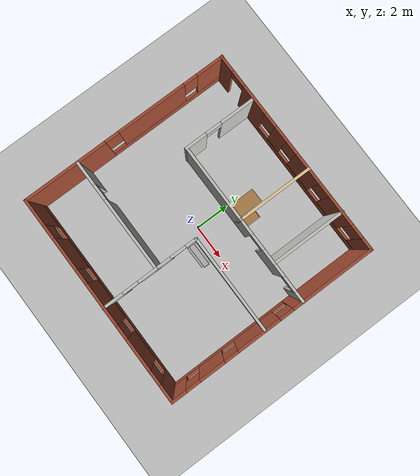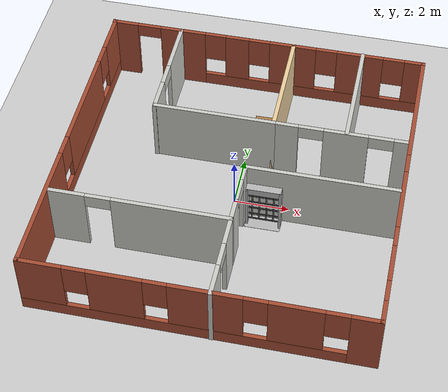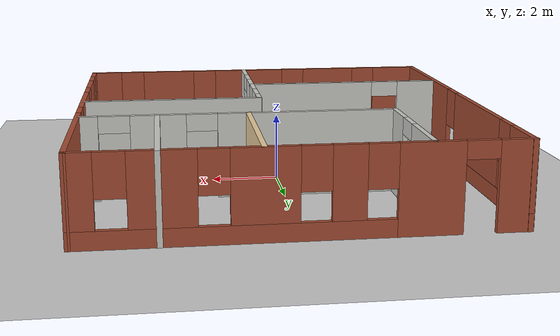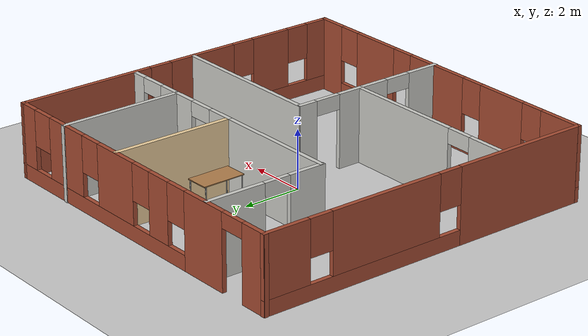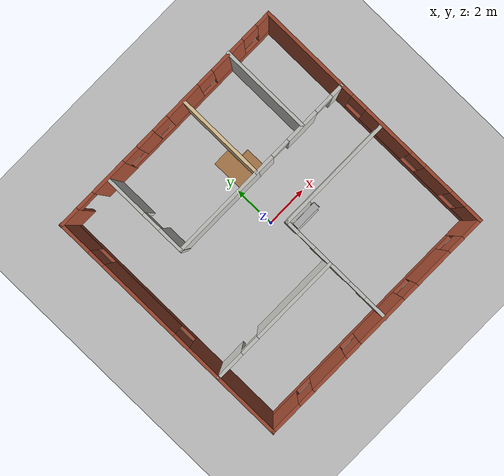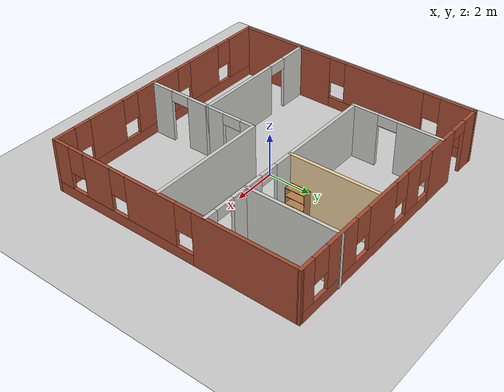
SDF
<sdf version="1.6">
 <world name="office">
  <model name="ground_plane">
   <static>1</static>
   <link name="link">
    <collision name="collision">
     <geometry><plane><normal>0 0 1</normal><size>100 100</size></plane></geometry>
     <surface><friction><ode><mu>100</mu><mu2>50</mu2></ode></friction></surface>
    </collision>
    <visual name="visual">
     <cast_shadows>0</cast_shadows>
     <geometry><plane><normal>0 0 1</normal><size>100 100</size></plane></geometry>
     <material>
      <script><uri>file://media/materials/scripts/gazebo.material</uri><name>Gazebo/Grey</name></script>
     </material>
    </visual>
   </link>
  </model>
  <model name="building">
   <link name="Wall_0">
    <pose>-5.91755 0.003133 0 0 -0 1.5708</pose>
    <visual name="Wall_0_Visual_0">
     <pose>-3.58906 0 1.25 0 -0 0</pose>
     <geometry><box><size>4.82188 0.15 2.5</size></box></geometry>
     <material>
      <script><uri>file://media/materials/scripts/gazebo.material</uri><name>Gazebo/Bricks</name></script>
      <ambient>1 1 1 1</ambient>
     </material>
     <meta><layer>0</layer></meta>
    </visual>
    <collision name="Wall_0_Collision_0">
     <geometry><box><size>4.82188 0.15 2.5</size></box></geometry>
     <pose>-3.58906 0 1.25 0 -0 0</pose>
    </collision>
    <visual name="Wall_0_Visual_1">
     <pose>2.41094 0 0.25 0 -0 0</pose>
     <geometry><box><size>7.17812 0.15 0.5</size></box></geometry>
     <material>
      <script><uri>file://media/materials/scripts/gazebo.material</uri><name>Gazebo/Bricks</name></script>
      <ambient>1 1 1 1</ambient>
     </material>
     <meta><layer>0</layer></meta>
    </visual>
    <collision name="Wall_0_Collision_1">
     <geometry><box><size>7.17812 0.15 0.5</size></box></geometry>
     <pose>2.41094 0 0.25 0 -0 0</pose>
    </collision>
    <visual name="Wall_0_Visual_2">
     <pose>1.60287 0 1.5 0 -0 0</pose>
     <geometry><box><size>3.96196 0.15 2</size></box></geometry>
     <material>
      <script><uri>file://media/materials/scripts/gazebo.material</uri><name>Gazebo/Bricks</name></script>
      <ambient>1 1 1 1</ambient>
     </material>
     <meta><layer>0</layer></meta>
    </visual>
    <collision name="Wall_0_Collision_2">
     <geometry><box><size>3.96196 0.15 2</size></box></geometry>
     <pose>1.60287 0 1.5 0 -0 0</pose>
    </collision>
    <visual name="Wall_0_Visual_3">
     <pose>5.19192 0 1.5 0 -0 0</pose>
     <geometry><box><size>1.61615 0.15 2</size></box></geometry>
     <material>
      <script><uri>file://media/materials/scripts/gazebo.material</uri><name>Gazebo/Bricks</name></script>
      <ambient>1 1 1 1</ambient>
     </material>
     <meta><layer>0</layer></meta>
    </visual>
    <collision name="Wall_0_Collision_3">
     <geometry><box><size>1.61615 0.15 2</size></box></geometry>
     <pose>5.19192 0 1.5 0 -0 0</pose>
    </collision>
    <visual name="Wall_0_Visual_4">
     <pose>-0.778116 0 1.9 0 -0 0</pose>
     <geometry><box><size>0.8 0.15 1.2</size></box></geometry>
     <material>
      <script><uri>file://media/materials/scripts/gazebo.material</uri><name>Gazebo/Bricks</name></script>
      <ambient>1 1 1 1</ambient>
     </material>
     <meta><layer>0</layer></meta>
    </visual>
    <collision name="Wall_0_Collision_4">
     <geometry><box><size>0.8 0.15 1.2</size></box></geometry>
     <pose>-0.778116 0 1.9 0 -0 0</pose>
    </collision>
    <visual name="Wall_0_Visual_5">
     <pose>3.98385 0 1.9 0 -0 0</pose>
     <geometry><box><size>0.8 0.15 1.2</size></box></geometry>
     <material>
      <script><uri>file://media/materials/scripts/gazebo.material</uri><name>Gazebo/Bricks</name></script>
      <ambient>1 1 1 1</ambient>
     </material>
     <meta><layer>0</layer></meta>
    </visual>
    <collision name="Wall_0_Collision_5">
     <geometry><box><size>0.8 0.15 1.2</size></box></geometry>
     <pose>3.98385 0 1.9 0 -0 0</pose>
    </collision>
   </link>
   <link name="Wall_10">
    <collision name="Wall_10_Collision">
     <geometry><box><size>4.48462 0.15 2.5</size></box></geometry>
     <pose>0 0 1.25 0 -0 0</pose>
    </collision>
    <visual name="Wall_10_Visual">
     <pose>0 0 1.25 0 -0 0</pose>
     <geometry><box><size>4.48462 0.15 2.5</size></box></geometry>
     <material>
      <script><uri>file://media/materials/scripts/gazebo.material</uri><name>Gazebo/CeilingTiled</name></script>
      <ambient>0.921569 0.807843 0.615686 1</ambient>
     </material>
     <meta><layer>0</layer></meta>
    </visual>
    <pose>-1.11979 1.80988 0 0 -0 0</pose>
   </link>
   <link name="Wall_11">
    <collision name="Wall_11_Collision">
     <geometry><box><size>4.25 0.15 2.5</size></box></geometry>
     <pose>0 0 1.25 0 -0 0</pose>
    </collision>
    <visual name="Wall_11_Visual">
     <pose>0 0 1.25 0 -0 0</pose>
     <geometry><box><size>4.25 0.15 2.5</size></box></geometry>
     <material>
      <script><uri>file://media/materials/scripts/gazebo.material</uri><name>Gazebo/Grey</name></script>
      <ambient>0.921569 0.807843 0.615686 1</ambient>
     </material>
     <meta><layer>0</layer></meta>
    </visual>
    <pose>1.04751 3.85988 0 0 -0 1.5708</pose>
   </link>
   <link name="Wall_15">
    <pose>3.47252 1.80988 0 0 -0 0</pose>
    <visual name="Wall_15_Visual_0">
     <pose>-2.01342 0 1.25 0 -0 0</pose>
     <geometry><box><size>0.973156 0.15 2.5</size></box></geometry>
     <material>
      <script><uri>file://media/materials/scripts/gazebo.material</uri><name>Gazebo/CeilingTiled</name></script>
      <ambient>0.996078 0.47451 0.0196078 1</ambient>
     </material>
     <meta><layer>0</layer></meta>
    </visual>
    <collision name="Wall_15_Collision_0">
     <geometry><box><size>0.973156 0.15 2.5</size></box></geometry>
     <pose>-2.01342 0 1.25 0 -0 0</pose>
    </collision>
    <visual name="Wall_15_Visual_1">
     <pose>0.174229 0 1.25 0 -0 0</pose>
     <geometry><box><size>1.60215 0.15 2.5</size></box></geometry>
     <material>
      <script><uri>file://media/materials/scripts/gazebo.material</uri><name>Gazebo/CeilingTiled</name></script>
      <ambient>0.996078 0.47451 0.0196078 1</ambient>
     </material>
     <meta><layer>0</layer></meta>
    </visual>
    <collision name="Wall_15_Collision_1">
     <geometry><box><size>1.60215 0.15 2.5</size></box></geometry>
     <pose>0.174229 0 1.25 0 -0 0</pose>
    </collision>
    <visual name="Wall_15_Visual_2">
     <pose>2.18765 0 1.25 0 -0 0</pose>
     <geometry><box><size>0.624697 0.15 2.5</size></box></geometry>
     <material>
      <script><uri>file://media/materials/scripts/gazebo.material</uri><name>Gazebo/CeilingTiled</name></script>
      <ambient>0.996078 0.47451 0.0196078 1</ambient>
     </material>
     <meta><layer>0</layer></meta>
    </visual>
    <collision name="Wall_15_Collision_2">
     <geometry><box><size>0.624697 0.15 2.5</size></box></geometry>
     <pose>2.18765 0 1.25 0 -0 0</pose>
    </collision>
    <visual name="Wall_15_Visual_3">
     <pose>-1.07684 0 2.25 0 -0 0</pose>
     <geometry><box><size>0.9 0.15 0.5</size></box></geometry>
     <material>
      <script><uri>file://media/materials/scripts/gazebo.material</uri><name>Gazebo/CeilingTiled</name></script>
      <ambient>0.996078 0.47451 0.0196078 1</ambient>
     </material>
     <meta><layer>0</layer></meta>
    </visual>
    <collision name="Wall_15_Collision_3">
     <geometry><box><size>0.9 0.15 0.5</size></box></geometry>
     <pose>-1.07684 0 2.25 0 -0 0</pose>
    </collision>
    <visual name="Wall_15_Visual_4">
     <pose>1.4253 0 2.25 0 -0 0</pose>
     <geometry><box><size>0.9 0.15 0.5</size></box></geometry>
     <material>
      <script><uri>file://media/materials/scripts/gazebo.material</uri><name>Gazebo/CeilingTiled</name></script>
      <ambient>0.996078 0.47451 0.0196078 1</ambient>
     </material>
     <meta><layer>0</layer></meta>
    </visual>
    <collision name="Wall_15_Collision_4">
     <geometry><box><size>0.9 0.15 0.5</size></box></geometry>
     <pose>1.4253 0 2.25 0 -0 0</pose>
    </collision>
   </link>
   <link name="Wall_17">
    <collision name="Wall_17_Collision">
     <geometry><box><size>4.25 0.15 2.5</size></box></geometry>
     <pose>0 0 1.25 0 -0 0</pose>
    </collision>
    <visual name="Wall_17_Visual">
     <pose>0 0 1.25 0 -0 0</pose>
     <geometry><box><size>4.25 0.15 2.5</size></box></geometry>
     <material>
      <script><uri>file://media/materials/scripts/gazebo.material</uri><name>Gazebo/CeilingTiled</name></script>
      <ambient>0.996078 0.47451 0.0196078 1</ambient>
     </material>
     <meta><layer>0</layer></meta>
    </visual>
    <pose>3.6718 3.89596 0 0 0 -1.5708</pose>
   </link>
   <link name="Wall_2">
    <pose>0 5.91836 0 0 -0 0.000595</pose>
    <visual name="Wall_2_Visual_0">
     <pose>-5.50579 0 1.25 0 -0 0</pose>
     <geometry><box><size>1.00011 0.15 2.5</size></box></geometry>
     <material>
      <script><uri>file://media/materials/scripts/gazebo.material</uri><name>Gazebo/Bricks</name></script>
      <ambient>0.921569 0.807843 0.615686 1</ambient>
     </material>
     <meta><layer>0</layer></meta>
    </visual>
    <collision name="Wall_2_Collision_0">
     <geometry><box><size>1.00011 0.15 2.5</size></box></geometry>
     <pose>-5.50579 0 1.25 0 -0 0</pose>
    </collision>
    <visual name="Wall_2_Visual_1">
     <pose>-3.235 0 1.25 0 -0 0</pose>
     <geometry><box><size>1.74147 0.15 2.5</size></box></geometry>
     <material>
      <script><uri>file://media/materials/scripts/gazebo.material</uri><name>Gazebo/Bricks</name></script>
      <ambient>0.921569 0.807843 0.615686 1</ambient>
     </material>
     <meta><layer>0</layer></meta>
    </visual>
    <collision name="Wall_2_Collision_1">
     <geometry><box><size>1.74147 0.15 2.5</size></box></geometry>
     <pose>-3.235 0 1.25 0 -0 0</pose>
    </collision>
    <visual name="Wall_2_Visual_2">
     <pose>1.82079 0 0.25 0 -0 0</pose>
     <geometry><box><size>8.37012 0.15 0.5</size></box></geometry>
     <material>
      <script><uri>file://media/materials/scripts/gazebo.material</uri><name>Gazebo/Bricks</name></script>
      <ambient>0.921569 0.807843 0.615686 1</ambient>
     </material>
     <meta><layer>0</layer></meta>
    </visual>
    <collision name="Wall_2_Collision_2">
     <geometry><box><size>8.37012 0.15 0.5</size></box></geometry>
     <pose>1.82079 0 0.25 0 -0 0</pose>
    </collision>
    <visual name="Wall_2_Visual_3">
     <pose>-1.1134 0 1.5 0 -0 0</pose>
     <geometry><box><size>0.901735 0.15 2</size></box></geometry>
     <material>
      <script><uri>file://media/materials/scripts/gazebo.material</uri><name>Gazebo/Bricks</name></script>
      <ambient>0.921569 0.807843 0.615686 1</ambient>
     </material>
     <meta><layer>0</layer></meta>
    </visual>
    <collision name="Wall_2_Collision_3">
     <geometry><box><size>0.901735 0.15 2</size></box></geometry>
     <pose>-1.1134 0 1.5 0 -0 0</pose>
    </collision>
    <visual name="Wall_2_Visual_4">
     <pose>1.02146 0 1.5 0 -0 0</pose>
     <geometry><box><size>1.76798 0.15 2</size></box></geometry>
     <material>
      <script><uri>file://media/materials/scripts/gazebo.material</uri><name>Gazebo/Bricks</name></script>
      <ambient>0.921569 0.807843 0.615686 1</ambient>
     </material>
     <meta><layer>0</layer></meta>
    </visual>
    <collision name="Wall_2_Collision_4">
     <geometry><box><size>1.76798 0.15 2</size></box></geometry>
     <pose>1.02146 0 1.5 0 -0 0</pose>
    </collision>
    <visual name="Wall_2_Visual_5">
     <pose>3.57391 0 1.5 0 -0 0</pose>
     <geometry><box><size>1.73691 0.15 2</size></box></geometry>
     <material>
      <script><uri>file://media/materials/scripts/gazebo.material</uri><name>Gazebo/Bricks</name></script>
      <ambient>0.921569 0.807843 0.615686 1</ambient>
     </material>
     <meta><layer>0</layer></meta>
    </visual>
    <collision name="Wall_2_Collision_5">
     <geometry><box><size>1.73691 0.15 2</size></box></geometry>
     <pose>3.57391 0 1.5 0 -0 0</pose>
    </collision>
    <visual name="Wall_2_Visual_6">
     <pose>5.62411 0 1.5 0 -0 0</pose>
     <geometry><box><size>0.763489 0.15 2</size></box></geometry>
     <material>
      <script><uri>file://media/materials/scripts/gazebo.material</uri><name>Gazebo/Bricks</name></script>
      <ambient>0.921569 0.807843 0.615686 1</ambient>
     </material>
     <meta><layer>0</layer></meta>
    </visual>
    <collision name="Wall_2_Collision_6">
     <geometry><box><size>0.763489 0.15 2</size></box></geometry>
     <pose>5.62411 0 1.5 0 -0 0</pose>
    </collision>
    <visual name="Wall_2_Visual_7">
     <pose>-1.96426 0 1.9 0 -0 0</pose>
     <geometry><box><size>0.8 0.15 1.2</size></box></geometry>
     <material>
      <script><uri>file://media/materials/scripts/gazebo.material</uri><name>Gazebo/Bricks</name></script>
      <ambient>0.921569 0.807843 0.615686 1</ambient>
     </material>
     <meta><layer>0</layer></meta>
    </visual>
    <collision name="Wall_2_Collision_7">
     <geometry><box><size>0.8 0.15 1.2</size></box></geometry>
     <pose>-1.96426 0 1.9 0 -0 0</pose>
    </collision>
    <visual name="Wall_2_Visual_8">
     <pose>-0.26253 0 1.9 0 -0 0</pose>
     <geometry><box><size>0.8 0.15 1.2</size></box></geometry>
     <material>
      <script><uri>file://media/materials/scripts/gazebo.material</uri><name>Gazebo/Bricks</name></script>
      <ambient>0.921569 0.807843 0.615686 1</ambient>
     </material>
     <meta><layer>0</layer></meta>
    </visual>
    <collision name="Wall_2_Collision_8">
     <geometry><box><size>0.8 0.15 1.2</size></box></geometry>
     <pose>-0.26253 0 1.9 0 -0 0</pose>
    </collision>
    <visual name="Wall_2_Visual_9">
     <pose>2.30545 0 1.9 0 -0 0</pose>
     <geometry><box><size>0.8 0.15 1.2</size></box></geometry>
     <material>
      <script><uri>file://media/materials/scripts/gazebo.material</uri><name>Gazebo/Bricks</name></script>
      <ambient>0.921569 0.807843 0.615686 1</ambient>
     </material>
     <meta><layer>0</layer></meta>
    </visual>
    <collision name="Wall_2_Collision_9">
     <geometry><box><size>0.8 0.15 1.2</size></box></geometry>
     <pose>2.30545 0 1.9 0 -0 0</pose>
    </collision>
    <visual name="Wall_2_Visual_10">
     <pose>4.84236 0 1.9 0 -0 0</pose>
     <geometry><box><size>0.8 0.15 1.2</size></box></geometry>
     <material>
      <script><uri>file://media/materials/scripts/gazebo.material</uri><name>Gazebo/Bricks</name></script>
      <ambient>0.921569 0.807843 0.615686 1</ambient>
     </material>
     <meta><layer>0</layer></meta>
    </visual>
    <collision name="Wall_2_Collision_10">
     <geometry><box><size>0.8 0.15 1.2</size></box></geometry>
     <pose>4.84236 0 1.9 0 -0 0</pose>
    </collision>
    <visual name="Wall_2_Visual_11">
     <pose>-4.55574 0 2.25 0 -0 0</pose>
     <geometry><box><size>0.9 0.15 0.5</size></box></geometry>
     <material>
      <script><uri>file://media/materials/scripts/gazebo.material</uri><name>Gazebo/Bricks</name></script>
      <ambient>0.921569 0.807843 0.615686 1</ambient>
     </material>
     <meta><layer>0</layer></meta>
    </visual>
    <collision name="Wall_2_Collision_11">
     <geometry><box><size>0.9 0.15 0.5</size></box></geometry>
     <pose>-4.55574 0 2.25 0 -0 0</pose>
    </collision>
   </link>
   <link name="Wall_20">
    <pose>-2.69192 -2.84596 0 0 -0 0</pose>
    <visual name="Wall_20_Visual_0">
     <pose>-2.55329 0 1.25 0 -0 0</pose>
     <geometry><box><size>1.39341 0.15 2.5</size></box></geometry>
     <material>
      <script><uri>file://media/materials/scripts/gazebo.material</uri><name>Gazebo/CeilingTiled</name></script>
      <ambient>1 0.764706 0.305882 1</ambient>
     </material>
     <meta><layer>0</layer></meta>
    </visual>
    <collision name="Wall_20_Collision_0">
     <geometry><box><size>1.39341 0.15 2.5</size></box></geometry>
     <pose>-2.55329 0 1.25 0 -0 0</pose>
    </collision>
    <visual name="Wall_20_Visual_1">
     <pose>1.14671 0 1.25 0 -0 0</pose>
     <geometry><box><size>4.20659 0.15 2.5</size></box></geometry>
     <material>
      <script><uri>file://media/materials/scripts/gazebo.material</uri><name>Gazebo/CeilingTiled</name></script>
      <ambient>1 0.764706 0.305882 1</ambient>
     </material>
     <meta><layer>0</layer></meta>
    </visual>
    <collision name="Wall_20_Collision_1">
     <geometry><box><size>4.20659 0.15 2.5</size></box></geometry>
     <pose>1.14671 0 1.25 0 -0 0</pose>
    </collision>
    <visual name="Wall_20_Visual_2">
     <pose>-1.40659 0 2.25 0 -0 0</pose>
     <geometry><box><size>0.9 0.15 0.5</size></box></geometry>
     <material>
      <script><uri>file://media/materials/scripts/gazebo.material</uri><name>Gazebo/CeilingTiled</name></script>
      <ambient>1 0.764706 0.305882 1</ambient>
     </material>
     <meta><layer>0</layer></meta>
    </visual>
    <collision name="Wall_20_Collision_2">
     <geometry><box><size>0.9 0.15 0.5</size></box></geometry>
     <pose>-1.40659 0 2.25 0 -0 0</pose>
    </collision>
   </link>
   <link name="Wall_21">
    <pose>0.483078 -4.39596 0 0 0 -1.5708</pose>
    <visual name="Wall_21_Visual_0">
     <pose>-1.05225 0 1.25 0 -0 0</pose>
     <geometry><box><size>1.14549 0.15 2.5</size></box></geometry>
     <material>
      <script><uri>file://media/materials/scripts/gazebo.material</uri><name>Gazebo/CeilingTiled</name></script>
      <ambient>0.435294 0.796078 0.67451 1</ambient>
     </material>
     <meta><layer>0</layer></meta>
    </visual>
    <collision name="Wall_21_Collision_0">
     <geometry><box><size>1.14549 0.15 2.5</size></box></geometry>
     <pose>-1.05225 0 1.25 0 -0 0</pose>
    </collision>
    <visual name="Wall_21_Visual_1">
     <pose>1.02275 0 1.25 0 -0 0</pose>
     <geometry><box><size>1.20451 0.15 2.5</size></box></geometry>
     <material>
      <script><uri>file://media/materials/scripts/gazebo.material</uri><name>Gazebo/CeilingTiled</name></script>
      <ambient>0.435294 0.796078 0.67451 1</ambient>
     </material>
     <meta><layer>0</layer></meta>
    </visual>
    <collision name="Wall_21_Collision_1">
     <geometry><box><size>1.20451 0.15 2.5</size></box></geometry>
     <pose>1.02275 0 1.25 0 -0 0</pose>
    </collision>
    <visual name="Wall_21_Visual_2">
     <pose>-0.029508 0 2.25 0 -0 0</pose>
     <geometry><box><size>0.9 0.15 0.5</size></box></geometry>
     <material>
      <script><uri>file://media/materials/scripts/gazebo.material</uri><name>Gazebo/CeilingTiled</name></script>
      <ambient>0.435294 0.796078 0.67451 1</ambient>
     </material>
     <meta><layer>0</layer></meta>
    </visual>
    <collision name="Wall_21_Collision_2">
     <geometry><box><size>0.9 0.15 0.5</size></box></geometry>
     <pose>-0.029508 0 2.25 0 -0 0</pose>
    </collision>
   </link>
   <link name="Wall_23">
    <collision name="Wall_23_Collision">
     <geometry><box><size>5.5 0.15 2.5</size></box></geometry>
     <pose>0 0 1.25 0 -0 0</pose>
    </collision>
    <visual name="Wall_23_Visual">
     <pose>0 0 1.25 0 -0 0</pose>
     <geometry><box><size>5.5 0.15 2.5</size></box></geometry>
     <material>
      <script><uri>file://media/materials/scripts/gazebo.material</uri><name>Gazebo/CeilingTiled</name></script>
      <ambient>0.435294 0.796078 0.67451 1</ambient>
     </material>
     <meta><layer>0</layer></meta>
    </visual>
    <pose>3.17532 -0.459711 0 0 -0 3.14159</pose>
   </link>
   <link name="Wall_25">
    <pose>0.483078 -1.67096 0 0 -0 1.5708</pose>
    <visual name="Wall_25_Visual_0">
     <pose>-0.782101 0 1.25 0 -0 0</pose>
     <geometry><box><size>0.935797 0.15 2.5</size></box></geometry>
     <material>
      <script><uri>file://media/materials/scripts/gazebo.material</uri><name>Gazebo/CeilingTiled</name></script>
      <ambient>0.435294 0.796078 0.67451 1</ambient>
     </material>
     <meta><layer>0</layer></meta>
    </visual>
    <collision name="Wall_25_Collision_0">
     <geometry><box><size>0.935797 0.15 2.5</size></box></geometry>
     <pose>-0.782101 0 1.25 0 -0 0</pose>
    </collision>
    <visual name="Wall_25_Visual_1">
     <pose>0.917899 0 1.25 0 -0 0</pose>
     <geometry><box><size>0.664203 0.15 2.5</size></box></geometry>
     <material>
      <script><uri>file://media/materials/scripts/gazebo.material</uri><name>Gazebo/CeilingTiled</name></script>
      <ambient>0.435294 0.796078 0.67451 1</ambient>
     </material>
     <meta><layer>0</layer></meta>
    </visual>
    <collision name="Wall_25_Collision_1">
     <geometry><box><size>0.664203 0.15 2.5</size></box></geometry>
     <pose>0.917899 0 1.25 0 -0 0</pose>
    </collision>
    <visual name="Wall_25_Visual_2">
     <pose>0.135797 0 2.25 0 -0 0</pose>
     <geometry><box><size>0.9 0.15 0.5</size></box></geometry>
     <material>
      <script><uri>file://media/materials/scripts/gazebo.material</uri><name>Gazebo/CeilingTiled</name></script>
      <ambient>0.435294 0.796078 0.67451 1</ambient>
     </material>
     <meta><layer>0</layer></meta>
    </visual>
    <collision name="Wall_25_Collision_2">
     <geometry><box><size>0.9 0.15 0.5</size></box></geometry>
     <pose>0.135797 0 2.25 0 -0 0</pose>
    </collision>
   </link>
   <link name="Wall_3">
    <pose>5.93085 -0.003114 0 0 0 -1.5708</pose>
    <visual name="Wall_3_Visual_0">
     <pose>-3.61577 0 1.25 0 -0 0</pose>
     <geometry><box><size>4.76845 0.15 2.5</size></box></geometry>
     <material>
      <script><uri>file://media/materials/scripts/gazebo.material</uri><name>Gazebo/Bricks</name></script>
      <ambient>1 1 1 1</ambient>
     </material>
     <meta><layer>0</layer></meta>
    </visual>
    <collision name="Wall_3_Collision_0">
     <geometry><box><size>4.76845 0.15 2.5</size></box></geometry>
     <pose>-3.61577 0 1.25 0 -0 0</pose>
    </collision>
    <visual name="Wall_3_Visual_1">
     <pose>2.38423 0 0.25 0 -0 0</pose>
     <geometry><box><size>7.23155 0.15 0.5</size></box></geometry>
     <material>
      <script><uri>file://media/materials/scripts/gazebo.material</uri><name>Gazebo/Bricks</name></script>
      <ambient>1 1 1 1</ambient>
     </material>
     <meta><layer>0</layer></meta>
    </visual>
    <collision name="Wall_3_Collision_1">
     <geometry><box><size>7.23155 0.15 0.5</size></box></geometry>
     <pose>2.38423 0 0.25 0 -0 0</pose>
    </collision>
    <visual name="Wall_3_Visual_2">
     <pose>0.812347 0 1.5 0 -0 0</pose>
     <geometry><box><size>2.48779 0.15 2</size></box></geometry>
     <material>
      <script><uri>file://media/materials/scripts/gazebo.material</uri><name>Gazebo/Bricks</name></script>
      <ambient>1 1 1 1</ambient>
     </material>
     <meta><layer>0</layer></meta>
    </visual>
    <collision name="Wall_3_Collision_2">
     <geometry><box><size>2.48779 0.15 2</size></box></geometry>
     <pose>0.812347 0 1.5 0 -0 0</pose>
    </collision>
    <visual name="Wall_3_Visual_3">
     <pose>3.57916 0 1.5 0 -0 0</pose>
     <geometry><box><size>1.44583 0.15 2</size></box></geometry>
     <material>
      <script><uri>file://media/materials/scripts/gazebo.material</uri><name>Gazebo/Bricks</name></script>
      <ambient>1 1 1 1</ambient>
     </material>
     <meta><layer>0</layer></meta>
    </visual>
    <collision name="Wall_3_Collision_3">
     <geometry><box><size>1.44583 0.15 2</size></box></geometry>
     <pose>3.57916 0 1.5 0 -0 0</pose>
    </collision>
    <visual name="Wall_3_Visual_4">
     <pose>5.55103 0 1.5 0 -0 0</pose>
     <geometry><box><size>0.89793 0.15 2</size></box></geometry>
     <material>
      <script><uri>file://media/materials/scripts/gazebo.material</uri><name>Gazebo/Bricks</name></script>
      <ambient>1 1 1 1</ambient>
     </material>
     <meta><layer>0</layer></meta>
    </visual>
    <collision name="Wall_3_Collision_4">
     <geometry><box><size>0.89793 0.15 2</size></box></geometry>
     <pose>5.55103 0 1.5 0 -0 0</pose>
    </collision>
    <visual name="Wall_3_Visual_5">
     <pose>-0.831546 0 1.9 0 -0 0</pose>
     <geometry><box><size>0.8 0.15 1.2</size></box></geometry>
     <material>
      <script><uri>file://media/materials/scripts/gazebo.material</uri><name>Gazebo/Bricks</name></script>
      <ambient>1 1 1 1</ambient>
     </material>
     <meta><layer>0</layer></meta>
    </visual>
    <collision name="Wall_3_Collision_5">
     <geometry><box><size>0.8 0.15 1.2</size></box></geometry>
     <pose>-0.831546 0 1.9 0 -0 0</pose>
    </collision>
    <visual name="Wall_3_Visual_6">
     <pose>2.45624 0 1.9 0 -0 0</pose>
     <geometry><box><size>0.8 0.15 1.2</size></box></geometry>
     <material>
      <script><uri>file://media/materials/scripts/gazebo.material</uri><name>Gazebo/Bricks</name></script>
      <ambient>1 1 1 1</ambient>
     </material>
     <meta><layer>0</layer></meta>
    </visual>
    <collision name="Wall_3_Collision_6">
     <geometry><box><size>0.8 0.15 1.2</size></box></geometry>
     <pose>2.45624 0 1.9 0 -0 0</pose>
    </collision>
    <visual name="Wall_3_Visual_7">
     <pose>4.70207 0 1.9 0 -0 0</pose>
     <geometry><box><size>0.8 0.15 1.2</size></box></geometry>
     <material>
      <script><uri>file://media/materials/scripts/gazebo.material</uri><name>Gazebo/Bricks</name></script>
      <ambient>1 1 1 1</ambient>
     </material>
     <meta><layer>0</layer></meta>
    </visual>
    <collision name="Wall_3_Collision_7">
     <geometry><box><size>0.8 0.15 1.2</size></box></geometry>
     <pose>4.70207 0 1.9 0 -0 0</pose>
    </collision>
   </link>
   <link name="Wall_4">
    <pose>0.00585 -5.92811 0 0 -0 3.14159</pose>
    <visual name="Wall_4_Visual_0">
     <pose>-5.4743 0 1.25 0 -0 0</pose>
     <geometry><box><size>1.05139 0.15 2.5</size></box></geometry>
     <material>
      <script><uri>file://media/materials/scripts/gazebo.material</uri><name>Gazebo/Bricks</name></script>
      <ambient>1 1 1 1</ambient>
     </material>
     <meta><layer>0</layer></meta>
    </visual>
    <collision name="Wall_4_Collision_0">
     <geometry><box><size>1.05139 0.15 2.5</size></box></geometry>
     <pose>-5.4743 0 1.25 0 -0 0</pose>
    </collision>
    <visual name="Wall_4_Visual_1">
     <pose>0.525697 0 0.25 0 -0 0</pose>
     <geometry><box><size>10.9486 0.15 0.5</size></box></geometry>
     <material>
      <script><uri>file://media/materials/scripts/gazebo.material</uri><name>Gazebo/Bricks</name></script>
      <ambient>1 1 1 1</ambient>
     </material>
     <meta><layer>0</layer></meta>
    </visual>
    <collision name="Wall_4_Collision_1">
     <geometry><box><size>10.9486 0.15 0.5</size></box></geometry>
     <pose>0.525697 0 0.25 0 -0 0</pose>
    </collision>
    <visual name="Wall_4_Visual_2">
     <pose>-3.23854 0 1.5 0 -0 0</pose>
     <geometry><box><size>1.82013 0.15 2</size></box></geometry>
     <material>
      <script><uri>file://media/materials/scripts/gazebo.material</uri><name>Gazebo/Bricks</name></script>
      <ambient>1 1 1 1</ambient>
     </material>
     <meta><layer>0</layer></meta>
    </visual>
    <collision name="Wall_4_Collision_2">
     <geometry><box><size>1.82013 0.15 2</size></box></geometry>
     <pose>-3.23854 0 1.5 0 -0 0</pose>
    </collision>
    <visual name="Wall_4_Visual_3">
     <pose>-0.290889 0 1.5 0 -0 0</pose>
     <geometry><box><size>2.47517 0.15 2</size></box></geometry>
     <material>
      <script><uri>file://media/materials/scripts/gazebo.material</uri><name>Gazebo/Bricks</name></script>
      <ambient>1 1 1 1</ambient>
     </material>
     <meta><layer>0</layer></meta>
    </visual>
    <collision name="Wall_4_Collision_3">
     <geometry><box><size>2.47517 0.15 2</size></box></geometry>
     <pose>-0.290889 0 1.5 0 -0 0</pose>
    </collision>
    <visual name="Wall_4_Visual_4">
     <pose>2.68016 0 1.5 0 -0 0</pose>
     <geometry><box><size>1.86692 0.15 2</size></box></geometry>
     <material>
      <script><uri>file://media/materials/scripts/gazebo.material</uri><name>Gazebo/Bricks</name></script>
      <ambient>1 1 1 1</ambient>
     </material>
     <meta><layer>0</layer></meta>
    </visual>
    <collision name="Wall_4_Collision_4">
     <geometry><box><size>1.86692 0.15 2</size></box></geometry>
     <pose>2.68016 0 1.5 0 -0 0</pose>
    </collision>
    <visual name="Wall_4_Visual_5">
     <pose>5.20681 0 1.5 0 -0 0</pose>
     <geometry><box><size>1.58638 0.15 2</size></box></geometry>
     <material>
      <script><uri>file://media/materials/scripts/gazebo.material</uri><name>Gazebo/Bricks</name></script>
      <ambient>1 1 1 1</ambient>
     </material>
     <meta><layer>0</layer></meta>
    </visual>
    <collision name="Wall_4_Collision_5">
     <geometry><box><size>1.58638 0.15 2</size></box></geometry>
     <pose>5.20681 0 1.5 0 -0 0</pose>
    </collision>
    <visual name="Wall_4_Visual_6">
     <pose>-4.54861 0 1.9 0 -0 0</pose>
     <geometry><box><size>0.8 0.15 1.2</size></box></geometry>
     <material>
      <script><uri>file://media/materials/scripts/gazebo.material</uri><name>Gazebo/Bricks</name></script>
      <ambient>1 1 1 1</ambient>
     </material>
     <meta><layer>0</layer></meta>
    </visual>
    <collision name="Wall_4_Collision_6">
     <geometry><box><size>0.8 0.15 1.2</size></box></geometry>
     <pose>-4.54861 0 1.9 0 -0 0</pose>
    </collision>
    <visual name="Wall_4_Visual_7">
     <pose>-1.92847 0 1.9 0 -0 0</pose>
     <geometry><box><size>0.8 0.15 1.2</size></box></geometry>
     <material>
      <script><uri>file://media/materials/scripts/gazebo.material</uri><name>Gazebo/Bricks</name></script>
      <ambient>1 1 1 1</ambient>
     </material>
     <meta><layer>0</layer></meta>
    </visual>
    <collision name="Wall_4_Collision_7">
     <geometry><box><size>0.8 0.15 1.2</size></box></geometry>
     <pose>-1.92847 0 1.9 0 -0 0</pose>
    </collision>
    <visual name="Wall_4_Visual_8">
     <pose>1.34669 0 1.9 0 -0 0</pose>
     <geometry><box><size>0.8 0.15 1.2</size></box></geometry>
     <material>
      <script><uri>file://media/materials/scripts/gazebo.material</uri><name>Gazebo/Bricks</name></script>
      <ambient>1 1 1 1</ambient>
     </material>
     <meta><layer>0</layer></meta>
    </visual>
    <collision name="Wall_4_Collision_8">
     <geometry><box><size>0.8 0.15 1.2</size></box></geometry>
     <pose>1.34669 0 1.9 0 -0 0</pose>
    </collision>
    <visual name="Wall_4_Visual_9">
     <pose>4.01362 0 1.9 0 -0 0</pose>
     <geometry><box><size>0.8 0.15 1.2</size></box></geometry>
     <material>
      <script><uri>file://media/materials/scripts/gazebo.material</uri><name>Gazebo/Bricks</name></script>
      <ambient>1 1 1 1</ambient>
     </material>
     <meta><layer>0</layer></meta>
    </visual>
    <collision name="Wall_4_Collision_9">
     <geometry><box><size>0.8 0.15 1.2</size></box></geometry>
     <pose>4.01362 0 1.9 0 -0 0</pose>
    </collision>
   </link>
   <link name="Wall_6">
    <pose>-3.30684 3.83875 0 0 -0 1.5708</pose>
    <visual name="Wall_6_Visual_0">
     <pose>-1.48317 0 1.25 0 -0 0</pose>
     <geometry><box><size>1.28365 0.15 2.5</size></box></geometry>
     <material>
      <script><uri>file://media/materials/scripts/gazebo.material</uri><name>Gazebo/CeilingTiled</name></script>
      <ambient>0.760784 0.662745 0.627451 1</ambient>
     </material>
     <meta><layer>0</layer></meta>
    </visual>
    <collision name="Wall_6_Collision_0">
     <geometry><box><size>1.28365 0.15 2.5</size></box></geometry>
     <pose>-1.48317 0 1.25 0 -0 0</pose>
    </collision>
    <visual name="Wall_6_Visual_1">
     <pose>1.09183 0 1.25 0 -0 0</pose>
     <geometry><box><size>2.06635 0.15 2.5</size></box></geometry>
     <material>
      <script><uri>file://media/materials/scripts/gazebo.material</uri><name>Gazebo/CeilingTiled</name></script>
      <ambient>0.760784 0.662745 0.627451 1</ambient>
     </material>
     <meta><layer>0</layer></meta>
    </visual>
    <collision name="Wall_6_Collision_1">
     <geometry><box><size>2.06635 0.15 2.5</size></box></geometry>
     <pose>1.09183 0 1.25 0 -0 0</pose>
    </collision>
    <visual name="Wall_6_Visual_2">
     <pose>-0.391348 0 2.25 0 -0 0</pose>
     <geometry><box><size>0.9 0.15 0.5</size></box></geometry>
     <material>
      <script><uri>file://media/materials/scripts/gazebo.material</uri><name>Gazebo/CeilingTiled</name></script>
      <ambient>0.760784 0.662745 0.627451 1</ambient>
     </material>
     <meta><layer>0</layer></meta>
    </visual>
    <collision name="Wall_6_Collision_2">
     <geometry><box><size>0.9 0.15 0.5</size></box></geometry>
     <pose>-0.391348 0 2.25 0 -0 0</pose>
    </collision>
   </link>
   <static>1</static>
  </model>
  <model name="bookshelf">
   <static>1</static>
   <link name="link">
    <inertial><mass>1</mass></inertial>
    <collision name="back">
     <pose>0 0.005 0.6 0 -0 0</pose>
     <geometry><box><size>0.9 0.01 1.2</size></box></geometry>
    </collision>
    <visual name="visual1">
     <pose>0 0.005 0.6 0 -0 0</pose>
     <geometry><box><size>0.9 0.01 1.2</size></box></geometry>
     <material>
      <script><uri>file://media/materials/scripts/gazebo.material</uri><name>Gazebo/Wood</name></script>
     </material>
    </visual>
    <collision name="left_side">
     <pose>0.45 -0.195 0.6 0 -0 0</pose>
     <geometry><box><size>0.02 0.4 1.2</size></box></geometry>
    </collision>
    <visual name="visual2">
     <pose>0.45 -0.195 0.6 0 -0 0</pose>
     <geometry><box><size>0.02 0.4 1.2</size></box></geometry>
     <material>
      <script><uri>file://media/materials/scripts/gazebo.material</uri><name>Gazebo/Wood</name></script>
     </material>
    </visual>
    <collision name="right_side">
     <pose>-0.45 -0.195 0.6 0 -0 0</pose>
     <geometry><box><size>0.02 0.4 1.2</size></box></geometry>
    </collision>
    <visual name="visual3">
     <pose>-0.45 -0.195 0.6 0 -0 0</pose>
     <geometry><box><size>0.02 0.4 1.2</size></box></geometry>
     <material>
      <script><uri>file://media/materials/scripts/gazebo.material</uri><name>Gazebo/Wood</name></script>
     </material>
    </visual>
    <collision name="bottom">
     <pose>0 -0.195 0.03 0 -0 0</pose>
     <geometry><box><size>0.88 0.4 0.06</size></box></geometry>
    </collision>
    <visual name="visual4">
     <pose>0 -0.195 0.03 0 -0 0</pose>
     <geometry><box><size>0.88 0.4 0.06</size></box></geometry>
     <material>
      <script><uri>file://media/materials/scripts/gazebo.material</uri><name>Gazebo/Wood</name></script>
     </material>
    </visual>
    <collision name="top">
     <pose>0 -0.195 1.19 0 -0 0</pose>
     <geometry><box><size>0.88 0.4 0.02</size></box></geometry>
    </collision>
    <visual name="visual5">
     <pose>0 -0.195 1.19 0 -0 0</pose>
     <geometry><box><size>0.88 0.4 0.02</size></box></geometry>
     <material>
      <script><uri>file://media/materials/scripts/gazebo.material</uri><name>Gazebo/Wood</name></script>
     </material>
    </visual>
    <collision name="low_shelf">
     <pose>0 -0.195 0.43 0 -0 0</pose>
     <geometry><box><size>0.88 0.4 0.02</size></box></geometry>
    </collision>
    <visual name="visual6">
     <pose>0 -0.195 0.43 0 -0 0</pose>
     <geometry><box><size>0.88 0.4 0.02</size></box></geometry>
     <material>
      <script><uri>file://media/materials/scripts/gazebo.material</uri><name>Gazebo/Wood</name></script>
     </material>
    </visual>
    <collision name="high_shelf">
     <pose>0 -0.195 0.8 0 -0 0</pose>
     <geometry><box><size>0.88 0.4 0.02</size></box></geometry>
    </collision>
    <visual name="visual7">
     <pose>0 -0.195 0.8 0 -0 0</pose>
     <geometry><box><size>0.88 0.4 0.02</size></box></geometry>
     <material>
      <script><uri>file://media/materials/scripts/gazebo.material</uri><name>Gazebo/Wood</name></script>
     </material>
    </visual>
   </link>
   <pose>1.13297 2.39024 0 0 -0 1.57136</pose>
  </model>
  <model name="frc2016_portcullis">
   <link name="base">
    <inertial>
     <mass>50</mass>
     <pose>0 0 1.02941 0 -0 0</pose>
     <inertia><ixx>3.81711</ixx><ixy>0</ixy><ixz>0</ixz><iyy>4.87698</iyy><iyz>0</iyz><izz>1.6283</izz></inertia>
    </inertial>
    <visual name="platform">
     <pose>0 0 0.07284 0 -0 0</pose>
     <geometry><box><size>1.27 0.5842 0.003175</size></box></geometry>
    </visual>
    <collision name="platform">
     <pose>0 0 0.07284 0 -0 0</pose>
     <geometry><box><size>1.27 0.5842 0.003175</size></box></geometry>
    </collision>
    <visual name="left_column">
     <pose>0.59284 0 0.99042 0 -0 0</pose>
     <geometry><box><size>0.08375 0.28575 1.83198</size></box></geometry>
    </visual>
    <collision name="left_column">
     <pose>0.59284 0 0.99042 0 -0 0</pose>
     <geometry><box><size>0.08375 0.28575 1.83198</size></box></geometry>
    </collision>
    <visual name="right_column">
     <pose>-0.57759 0 0.99042 0 -0 0</pose>
     <geometry><box><size>0.08375 0.28575 1.83198</size></box></geometry>
    </visual>
    <collision name="right_column">
     <pose>-0.57759 0 0.99042 0 -0 0</pose>
     <geometry><box><size>0.08375 0.28575 1.83198</size></box></geometry>
    </collision>
    <visual name="top">
     <pose>-0.00034 0 1.77722 0 -0 0</pose>
     <geometry><box><size>1.22962 0.28575 0.26657</size></box></geometry>
    </visual>
    <collision name="top">
     <pose>-0.00034 0 1.77722 0 -0 0</pose>
     <geometry><box><size>1.22962 0.28575 0.26657</size></box></geometry>
    </collision>
    <visual name="castor1">
     <pose>-0.45651 -0.16234 0.03272 0 -0 0</pose>
     <geometry><sphere><radius>0.03272</radius></sphere></geometry>
    </visual>
    <collision name="castor1">
     <pose>-0.45651 -0.16234 0.03272 0 -0 0</pose>
     <geometry><sphere><radius>0.03272</radius></sphere></geometry>
    </collision>
    <visual name="castor2">
     <pose>-0.27883 0.21836 0.03272 0 -0 0</pose>
     <geometry><sphere><radius>0.03272</radius></sphere></geometry>
    </visual>
    <collision name="castor2">
     <pose>-0.27883 0.21836 0.03272 0 -0 0</pose>
     <geometry><sphere><radius>0.03272</radius></sphere></geometry>
    </collision>
    <visual name="castor3">
     <pose>0.28083 0.21906 0.03272 0 -0 0</pose>
     <geometry><sphere><radius>0.03272</radius></sphere></geometry>
    </visual>
    <collision name="castor3">
     <pose>0.28083 0.21906 0.03272 0 -0 0</pose>
     <geometry><sphere><radius>0.03272</radius></sphere></geometry>
    </collision>
    <visual name="castor4">
     <pose>0.45871 -0.16186 0.03272 0 -0 0</pose>
     <geometry><sphere><radius>0.03272</radius></sphere></geometry>
    </visual>
    <collision name="castor4">
     <pose>0.45871 -0.16186 0.03272 0 -0 0</pose>
     <geometry><sphere><radius>0.03272</radius></sphere></geometry>
    </collision>
   </link>
   <link name="gate">
    <pose>-0.0287 0.02885 0.93327 0 -0 0</pose>
    <inertial>
     <mass>2</mass>
     <inertia><ixx>3.81711</ixx><ixy>0</ixy><ixz>0</ixz><iyy>4.87698</iyy><iyz>0</iyz><izz>1.6283</izz></inertia>
    </inertial>
    <collision name="collision"><geometry><box><size>1.1938 0.02496 1.45732</size></box></geometry></collision>
    <visual name="horz_1">
     <pose>0 0 -0.70326 0 -0 0</pose>
     <geometry><box><size>1.1938 0.02496 0.0508</size></box></geometry>
     <material><ambient>0.4 0.4 0.4 1</ambient><diffuse>0.4 0.4 0.4 1</diffuse></material>
    </visual>
    <visual name="horz_2">
     <pose>0 0 -0.44926 0 -0 0</pose>
     <geometry><box><size>1.1938 0.02496 0.0508</size></box></geometry>
     <material><ambient>0.4 0.4 0.4 1</ambient><diffuse>0.4 0.4 0.4 1</diffuse></material>
    </visual>
    <visual name="horz_3">
     <pose>0 0 -0.14517 0 -0 0</pose>
     <geometry><box><size>1.1938 0.02496 0.0508</size></box></geometry>
     <material><ambient>0.4 0.4 0.4 1</ambient><diffuse>0.4 0.4 0.4 1</diffuse></material>
    </visual>
    <visual name="horz_4">
     <pose>0 0 0.16034 0 -0 0</pose>
     <geometry><box><size>1.1938 0.02496 0.0508</size></box></geometry>
     <material><ambient>0.4 0.4 0.4 1</ambient><diffuse>0.4 0.4 0.4 1</diffuse></material>
    </visual>
    <visual name="horz_5">
     <pose>0 0 0.46514 0 -0 0</pose>
     <geometry><box><size>1.1938 0.02496 0.0508</size></box></geometry>
     <material><ambient>0.4 0.4 0.4 1</ambient><diffuse>0.4 0.4 0.4 1</diffuse></material>
    </visual>
    <visual name="horz_6">
     <pose>0 0 0.72994 0 -0 0</pose>
     <geometry><box><size>1.1938 0.02496 0.0508</size></box></geometry>
     <material><ambient>0.4 0.4 0.4 1</ambient><diffuse>0.4 0.4 0.4 1</diffuse></material>
    </visual>
    <visual name="vert_1">
     <pose>-0.58448 0 0 0 -0 0</pose>
     <geometry><box><size>0.02495 0.02496 1.45732</size></box></geometry>
     <material><ambient>0.4 0.4 0.4 1</ambient><diffuse>0.4 0.4 0.4 1</diffuse></material>
    </visual>
    <visual name="vert_2">
     <pose>-0.38128 0 0 0 -0 0</pose>
     <geometry><box><size>0.0508 0.02496 1.45732</size></box></geometry>
     <material><ambient>0.4 0.4 0.4 1</ambient><diffuse>0.4 0.4 0.4 1</diffuse></material>
    </visual>
    <visual name="vert_3">
     <pose>-0.12728 0 0 0 -0 0</pose>
     <geometry><box><size>0.0508 0.02496 1.45732</size></box></geometry>
     <material><ambient>0.4 0.4 0.4 1</ambient><diffuse>0.4 0.4 0.4 1</diffuse></material>
    </visual>
    <visual name="vert_4">
     <pose>0.12672 0 0 0 -0 0</pose>
     <geometry><box><size>0.0508 0.02496 1.45732</size></box></geometry>
     <material><ambient>0.4 0.4 0.4 1</ambient><diffuse>0.4 0.4 0.4 1</diffuse></material>
    </visual>
    <visual name="vert_5">
     <pose>0.38072 0 0 0 -0 0</pose>
     <geometry><box><size>0.0508 0.02496 1.45732</size></box></geometry>
     <material><ambient>0.4 0.4 0.4 1</ambient><diffuse>0.4 0.4 0.4 1</diffuse></material>
    </visual>
    <visual name="vert_6">
     <pose>0.58392 0 0 0 -0 0</pose>
     <geometry><box><size>0.02495 0.02496 1.45732</size></box></geometry>
     <material><ambient>0.4 0.4 0.4 1</ambient><diffuse>0.4 0.4 0.4 1</diffuse></material>
    </visual>
   </link>
   <joint name="joint" type="prismatic">
    <parent>base</parent>
    <child>gate</child>
    <axis>
     <xyz>0 0 1</xyz>
     <limit><lower>0</lower><upper>1</upper></limit>
     <use_parent_model_frame>0</use_parent_model_frame>
     <dynamics><spring_reference>0</spring_reference><spring_stiffness>0</spring_stiffness></dynamics>
    </axis>
   </joint>
   <pose>1.22065 -0.829649 1e-06 2e-06 2e-06 0.00448</pose>
  </model>
  <model name="table">
   <static>1</static>
   <link name="link">
    <collision name="surface">
     <pose>0 0 1 0 -0 0</pose>
     <geometry><box><size>1.5 0.8 0.03</size></box></geometry>
     <surface><friction><ode><mu>0.6</mu><mu2>0.6</mu2></ode></friction></surface>
    </collision>
    <visual name="visual1">
     <pose>0 0 1 0 -0 0</pose>
     <geometry><box><size>1.5 0.8 0.03</size></box></geometry>
     <material>
      <script><uri>file://media/materials/scripts/gazebo.material</uri><name>Gazebo/Wood</name></script>
     </material>
    </visual>
    <collision name="front_left_leg">
     <pose>0.68 0.38 0.5 0 -0 0</pose>
     <geometry><cylinder><radius>0.02</radius><length>1</length></cylinder></geometry>
    </collision>
    <visual name="front_left_leg">
     <pose>0.68 0.38 0.5 0 -0 0</pose>
     <geometry><cylinder><radius>0.02</radius><length>1</length></cylinder></geometry>
     <material>
      <script><uri>file://media/materials/scripts/gazebo.material</uri><name>Gazebo/Grey</name></script>
     </material>
    </visual>
    <collision name="front_right_leg">
     <pose>0.68 -0.38 0.5 0 -0 0</pose>
     <geometry><cylinder><radius>0.02</radius><length>1</length></cylinder></geometry>
    </collision>
    <visual name="front_right_leg">
     <pose>0.68 -0.38 0.5 0 -0 0</pose>
     <geometry><cylinder><radius>0.02</radius><length>1</length></cylinder></geometry>
     <material>
      <script><uri>file://media/materials/scripts/gazebo.material</uri><name>Gazebo/Grey</name></script>
     </material>
    </visual>
    <collision name="back_right_leg">
     <pose>-0.68 -0.38 0.5 0 -0 0</pose>
     <geometry><cylinder><radius>0.02</radius><length>1</length></cylinder></geometry>
    </collision>
    <visual name="back_right_leg">
     <pose>-0.68 -0.38 0.5 0 -0 0</pose>
     <geometry><cylinder><radius>0.02</radius><length>1</length></cylinder></geometry>
     <material>
      <script><uri>file://media/materials/scripts/gazebo.material</uri><name>Gazebo/Grey</name></script>
     </material>
    </visual>
    <collision name="back_left_leg">
     <pose>-0.68 0.38 0.5 0 -0 0</pose>
     <geometry><cylinder><radius>0.02</radius><length>1</length></cylinder></geometry>
    </collision>
    <visual name="back_left_leg">
     <pose>-0.68 0.38 0.5 0 -0 0</pose>
     <geometry><cylinder><radius>0.02</radius><length>1</length></cylinder></geometry>
     <material>
      <script><uri>file://media/materials/scripts/gazebo.material</uri><name>Gazebo/Grey</name></script>
     </material>
    </visual>
   </link>
   <pose>0.531062 2.69728 0 0 -0 1.58379</pose>
  </model>
 </world>
</sdf>
